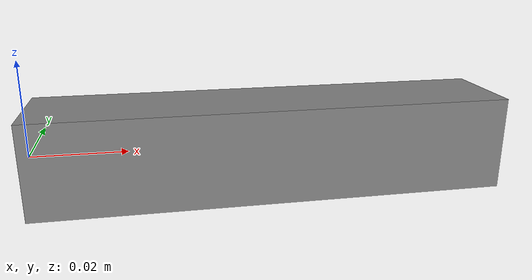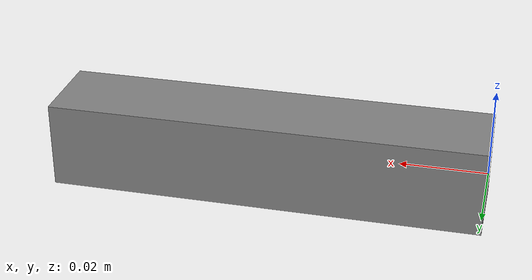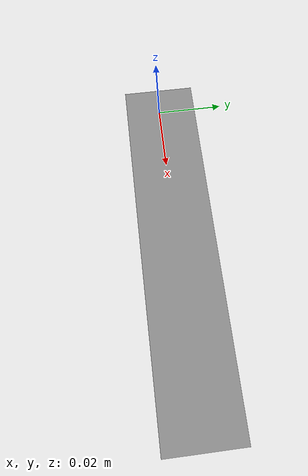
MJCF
<mujoco model="simple_actuator">
  <worldbody>
    <body name="body">
      <geom name="box" type="box" pos="0.05 0 0" size="0.05 0.01 0.01"/>
      <joint name="hinge" type="hinge" axis="0 1 0" range="0 90" damping="10"/>
    </body>
  </worldbody>
  <actuator>
    <position name="position" joint="hinge" inheritrange="0.9" gear="10"/>
  </actuator>
</mujoco>
